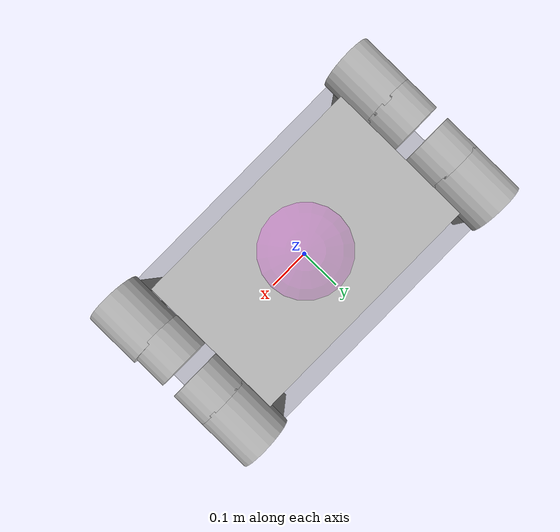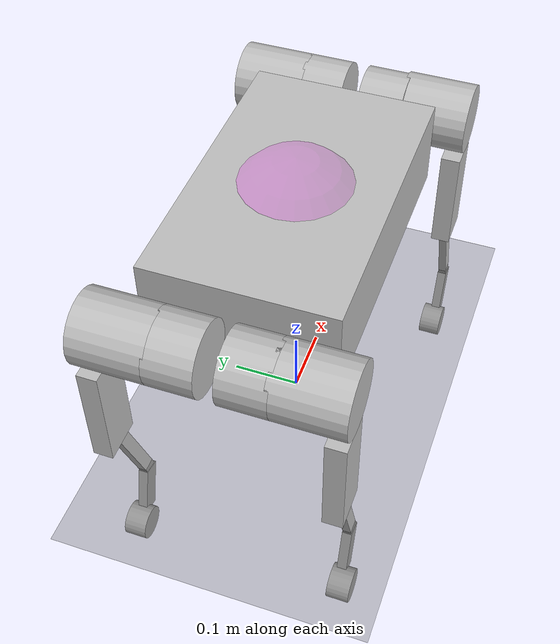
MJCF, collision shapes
<mujoco model="rcdog">
  <compiler angle="radian"/>

  <default class="main">
    <default class="hip_joint_range">
      <joint range="-0.87 0.87" type="hinge" limited="auto"  armature="0.01" frictionloss="0.2" />
      <position ctrlrange="-0.87 0.87" forcelimited="auto" forcerange="-60 60" kp="40." kv="1." />
    </default>
    <default class="thigh_joint_range">
      <joint range="-0.79 2.61" type="hinge" limited="auto"  armature="0.01" frictionloss="0.2" />
      <position ctrlrange="-0.79 2.61" forcelimited="auto" forcerange="-60 60" kp="40." kv="1." />
    </default>
    <default class="calf_joint_range">
      <joint range="-2.75 -0.55" type="hinge" limited="auto"  armature="0.01" frictionloss="0.2" />
      <position ctrlrange="-2.75 -0.55" forcelimited="auto" forcerange="-60 60" kp="40." kv="1." />
    </default>

    <default class="sensor_site">
      <site type="sphere" size="0.023" rgba="1 0 1 0.2" />
    </default>

    <default class="contype1">
      <geom contype="2" conaffinity="1" friction="1.2 0.8 0.0005" margin="0.002" condim="4" />
    </default>
    <default class="contype2">
      <geom contype="2" conaffinity="1" friction="1.2 0.8 0.0005" margin="0.002" condim="4" />
    </default>
    <default class="contype3">
      <geom contype="2" conaffinity="1" friction="1.2 0.8 0.0005" margin="0.002" condim="4" />
    </default>
    <default class="visualization">
      <geom contype="0" conaffinity="0" friction="1.2 0.8 0.0005" margin="0.002" condim="4" />
    </default>
  </default>

  <asset>
    <texture name="_plane" type="2d" builtin="checker" rgb1=".1 .1 .1" rgb2=".4 .4 .4"
        width="512" height="512" mark="cross" markrgb=".8 .8 .8" />
    <material name="_plane" reflectance="0.3" texture="_plane" texrepeat="1 1" texuniform="true" />

    <mesh name="lf_hip_link" file="meshes/lf_hip_link.STL"/>
    <mesh name="lf_thigh_link" file="meshes/lf_thigh_link.STL"/>
    <mesh name="lf_calf_link" file="meshes/lf_calf_link.STL"/>
    <mesh name="rf_hip_link" file="meshes/rf_hip_link.STL"/>
    <mesh name="rf_thigh_link" file="meshes/rf_thigh_link.STL"/>
    <mesh name="rf_calf_link" file="meshes/rf_calf_link.STL"/>
    <mesh name="lb_hip_link" file="meshes/lb_hip_link.STL"/>
    <mesh name="lb_thigh_link" file="meshes/lb_thigh_link.STL"/>
    <mesh name="lb_calf_link" file="meshes/lb_calf_link.STL"/>
    <mesh name="rb_hip_link" file="meshes/rb_hip_link.STL"/>
    <mesh name="rb_thigh_link" file="meshes/rb_thigh_link.STL"/>
    <mesh name="rb_calf_link" file="meshes/rb_calf_link.STL"/>

    <mesh name="lf_foot_link" file="meshes/lf_foot_link.STL"/>
    <mesh name="rf_foot_link" file="meshes/rf_foot_link.STL"/>
    <mesh name="lb_foot_link" file="meshes/lb_foot_link.STL"/>
    <mesh name="rb_foot_link" file="meshes/rb_foot_link.STL"/>
  </asset>

  <worldbody>
    <geom name="floor" pos="0 0 0" size="0 0 .25" type="plane" material="_plane" condim="3" />
    <light directional="true" ambient=".3 .3 .3" pos="30 30 30" dir="0 0 -1"
        diffuse="0.5 0.5 0.5" specular="0.5 0.5 0.5" />

  <body name="base_link" pos="0 0 0.35">
  <freejoint/>
    <site name="imu" class="sensor_site" size="0.1" pos="0.00 0.0 0.0" />
    <geom size="0.211 0.13 0.0625" type="box" rgba="0.753 0.753 0.753 1" class="visualization" />
    <body name="lf_hip_link" pos="0.27 0.077 0.0065">
      <inertial pos="-0.0049557 -0.0277292 -4.5e-06" quat="0.735051 0 0 0.678012" mass="0.351816" diaginertia="0.00027734 0.00022506 0.0001857"/>
      <joint name="lf_hip_roll_joint" pos="0 0 0" axis="1 0 0" range="-0.87 0.87"/>
      <geom type="mesh" rgba="0.4 0.4 0.4 1" mesh="lf_hip_link" class="visualization" />

      <geom size="0.05 0.0325" pos="0 -0.032 0" quat="0.707107 0.707107 0 0" type="cylinder" rgba="0.753 0.753 0.753 0"/>
      <body name="lf_thigh_link" pos="0 0.0820941 0">
        <inertial pos="-0.0049861 -0.028429 -0.032829" quat="0.694447 0.00340804 -0.00491324 0.719519" mass="0.658934" diaginertia="0.00112127 0.000994743 0.000290082"/>
        <joint name="lf_hip_pitch_joint" pos="0 0 0" axis="0 1 0" range="-0.79 2.61"/>
        <geom type="mesh" rgba="0.4 0.4 0.4 1" mesh="lf_thigh_link" class="visualization" />

        <geom size="0.05 0.05" pos="0 -0.035 0" quat="0.707107 0.707107 0 0" type="cylinder" rgba="0.753 0.753 0.753 0"/>
        <geom size="0.03 0.014 0.08" pos="-0.01 0 -0.13" type="box" rgba="0.753 0.753 0.753 0"/>
        <body name="lf_calf_link" pos="0 0 -0.2125">
          <inertial pos="0.0270111 -0.000371773 -0.169193" quat="0.710765 -0.00383657 -0.00528507 0.7034" mass="0.144651" diaginertia="0.00106985 0.00102817 5.60825e-05"/>
          <joint name="lf_knee_joint" pos="0 0 0" axis="0 1 0" range="-2.75 -0.55"/>
          <geom type="mesh" rgba="0.4 0.4 0.4 1" mesh="lf_calf_link" class="visualization" />
          <geom type="mesh" rgba="0.4 0.4 0.4 1" mesh="lf_foot_link" pos="0.0241527 0 -0.2386162" class="visualization" />

          <geom size="0.01 0.006 0.09" pos="0.03 0 -0.08" quat="0.984808 0 -0.173648 0" type="box" rgba="0.753 0.753 0.753 0"/>
          <geom size="0.014 0.007 0.04" pos="0.048 0 -0.195" quat="0.991445 0 0.130526 0" type="box" rgba="0.753 0.753 0.753 0"/>
          <geom size="0.025 0.0165" pos="0.0181731 0 -0.243416" quat="0.707107 0.707107 0 0" type="cylinder" rgba="0.753 0.753 0.753 0"/>
        </body>
      </body>
    </body>
    <body name="rf_hip_link" pos="0.27 -0.077 0.0065">
      <inertial pos="-0.0049556 0.0277281 0.0002435" quat="0.677955 0.00264509 -0.00355558 0.73509" mass="0.351816" diaginertia="0.000277247 0.00022506 0.000185693"/>
      <joint name="rf_hip_roll_joint" pos="0 0 0" axis="1 0 0" range="-0.87 0.87"/>
      <geom type="mesh" rgba="0.4 0.4 0.4 1" mesh="rf_hip_link" class="visualization" />

      <geom size="0.05 0.0325" pos="0 0.032 0" quat="0.707107 0.707107 0 0" type="cylinder" rgba="0.753 0.753 0.753 0"/>
      <body name="rf_thigh_link" pos="0.0062567 -0.0799602 -0.0007144">
        <inertial pos="-0.0049861 0.028429 -0.032829" quat="0.691989 -0.00580403 -0.0025322 0.721881" mass="0.658934" diaginertia="0.00112124 0.000994774 0.000290084"/>
        <joint name="rf_hip_pitch_joint" pos="0 0 0" axis="0 1 0" range="-0.79 2.61"/>
        <geom type="mesh" rgba="0.4 0.4 0.4 1" mesh="rf_thigh_link" class="visualization" />

        <geom size="0.05 0.05" pos="0 0.035 0" quat="0.707107 0.707107 0 0" type="cylinder" rgba="0.753 0.753 0.753 0"/>
        <geom size="0.03 0.014 0.08" pos="-0.01 0 -0.13" type="box" rgba="0.753 0.753 0.753 0"/>
        <body name="rf_calf_link" pos="0 0.0018314 -0.212492">
          <inertial pos="0.0270111 0.00112648 -0.16919" quat="0.710361 -0.000856967 -0.00823924 0.703789" mass="0.144651" diaginertia="0.00106988 0.00102816 5.60438e-05"/>
          <joint name="rf_knee_joint" pos="0 0 0" axis="0 1 0" range="-2.75 -0.55"/>
          <geom type="mesh" rgba="0.4 0.4 0.4 1" mesh="rf_calf_link" class="visualization" />
          <geom type="mesh" rgba="0.4 0.4 0.4 1" mesh="rf_foot_link" pos="0.0241527 0.0020565 -0.2386074" class="visualization" />

          <geom size="0.01 0.006 0.09" pos="0.03 0 -0.08" quat="0.984808 0 -0.173648 0" type="box" rgba="0.753 0.753 0.753 0"/>
          <geom size="0.014 0.007 0.04" pos="0.048 0 -0.195" quat="0.991445 0 0.130526 0" type="box" rgba="0.753 0.753 0.753 0"/>
          <geom size="0.025 0.0165" pos="0.0181731 0.0020565 -0.243407" quat="0.707107 0.707107 0 0" type="cylinder" rgba="0.753 0.753 0.753 0"/>
        </body>
      </body>
    </body>
    <body name="lb_hip_link" pos="-0.27 0.077 0.0065">
      <inertial pos="0.0049557 -0.0277292 4.5e-06" quat="0.678012 0 0 0.735051" mass="0.351816" diaginertia="0.00027734 0.00022506 0.0001857"/>
      <joint name="lb_hip_roll_joint" pos="0 0 0" axis="1 0 0" range="-0.87 0.87"/>
      <geom type="mesh" rgba="0.4 0.4 0.4 1" mesh="lb_hip_link" class="visualization" />

      <geom size="0.05 0.0325" pos="0 -0.032 0" quat="0.707107 0.707107 0 0" type="cylinder" rgba="0.753 0.753 0.753 0"/>
      <body name="lb_thigh_link" pos="0 0.0820941 0">
        <inertial pos="-0.0034269 -0.0273873 -0.0328343" quat="0.701723 -0.00981018 -0.0169627 0.71218" mass="0.658934" diaginertia="0.00112102 0.000971305 0.000313776"/>
        <joint name="lb_hip_pitch_joint" pos="0 0 0" axis="0 1 0" range="-0.79 2.61"/>
        <geom type="mesh" rgba="0.4 0.4 0.4 1" mesh="lb_thigh_link" class="visualization" />

        <geom size="0.05 0.05" pos="0 -0.035 0" quat="0.707107 0.707107 0 0" type="cylinder" rgba="0.753 0.753 0.753 0"/>
        <geom size="0.03 0.014 0.08" pos="-0.01 0 -0.13" type="box" rgba="0.753 0.753 0.753 0"/>
        <body name="lb_calf_link" pos="0 0 -0.2125">
          <inertial pos="0.0270111 -0.00124378 -0.169195" quat="0.719103 -0.00164006 -0.00738475 0.694863" mass="0.144651" diaginertia="0.00107003 0.00102822 5.61392e-05"/>
          <joint name="lb_knee_joint" pos="0 0 0" axis="0 1 0" range="-2.75 -0.55"/>
          <geom type="mesh" rgba="0.4 0.4 0.4 1" mesh="lb_calf_link" class="visualization" />
          <geom type="mesh" rgba="0.4 0.4 0.4 1" mesh="lb_foot_link" pos="0.0241527 0 -0.2386162" class="visualization" />

          <geom size="0.01 0.006 0.09" pos="0.03 0 -0.08" quat="0.984808 0 -0.173648 0" type="box" rgba="0.753 0.753 0.753 0"/>
          <geom size="0.014 0.007 0.04" pos="0.048 0 -0.195" quat="0.991445 0 0.130526 0" type="box" rgba="0.753 0.753 0.753 0"/>
          <geom size="0.025 0.0165" pos="0.0181731 0 -0.243416" quat="0.707107 0.707107 0 0" type="cylinder" rgba="0.753 0.753 0.753 0"/>
        </body>
      </body>
    </body>
    <body name="rb_hip_link" pos="-0.27 -0.077 0.0065">
      <inertial pos="0.0049557 0.027729 -4.5e-06" quat="0.735103 0 0 0.677955" mass="0.351816" diaginertia="0.00027724 0.00022506 0.0001857"/>
      <joint name="rb_hip_roll_joint" pos="0 0 0" axis="1 0 0" range="-0.87 0.87"/>
      <geom type="mesh" rgba="0.4 0.4 0.4 1" mesh="rb_hip_link" class="visualization" />

      <geom size="0.05 0.0325" pos="0 0.032 0" quat="0.707107 0.707107 0 0" type="cylinder" rgba="0.753 0.753 0.753 0"/>
      <body name="rb_thigh_link" pos="0 -0.0799664 0">
        <inertial pos="-0.0034269 0.0273873 -0.0328343" quat="0.718631 -0.0074457 0.00604231 0.695326" mass="0.658934" diaginertia="0.00112136 0.000970238 0.000314504"/>
        <joint name="rb_hip_pitch_joint" pos="0 0 0" axis="0 1 0" range="-0.79 2.61"/>
        <geom type="mesh" rgba="0.4 0.4 0.4 1" mesh="rb_thigh_link" class="visualization" />

        <geom size="0.05 0.05" pos="0 0.035 0" quat="0.707107 0.707107 0 0" type="cylinder" rgba="0.753 0.753 0.753 0"/>
        <geom size="0.03 0.014 0.08" pos="-0.01 0 -0.13" type="box" rgba="0.753 0.753 0.753 0"/>
        <body name="rb_calf_link" pos="0 0.0018315 -0.2125">
          <inertial pos="0.0270111 -0.000351129 -0.169195" quat="0.671267 -0.0131559 0.00498874 0.741082" mass="0.144651" diaginertia="0.00107097 0.00102898 5.66853e-05"/>
          <joint name="rb_knee_joint" pos="0 0 0" axis="0 1 0" range="-2.75 -0.55"/>
          <geom type="mesh" rgba="0.4 0.4 0.4 1" mesh="rb_calf_link" class="visualization" />
          <geom type="mesh" rgba="0.4 0.4 0.4 1" mesh="rb_foot_link" pos="0.0241527 -0.0039592 -0.2386162" class="visualization" />

          <geom size="0.01 0.006 0.09" pos="0.03 0 -0.08" quat="0.984808 0 -0.173648 0" type="box" rgba="0.753 0.753 0.753 0"/>
          <geom size="0.014 0.007 0.04" pos="0.048 0 -0.195" quat="0.991445 0 0.130526 0" type="box" rgba="0.753 0.753 0.753 0"/>
          <geom size="0.025 0.0165" pos="0.0181731 -0.0039592 -0.243416" quat="0.707107 0.707107 0 0" type="cylinder" rgba="0.753 0.753 0.753 0"/>
        </body>
      </body>
    </body>
  </body>
  </worldbody>

  <actuator>
    <position name="FL_hip_joint"   joint="lf_hip_roll_joint"   class="hip_joint_range" />
    <position name="FR_hip_joint"   joint="rf_hip_roll_joint"   class="hip_joint_range" />
    <position name="RL_hip_joint"   joint="lb_hip_roll_joint"   class="hip_joint_range" />
    <position name="RR_hip_joint"   joint="rb_hip_roll_joint"   class="hip_joint_range" />
    <position name="FL_thigh_joint" joint="lf_hip_pitch_joint" class="thigh_joint_range" />
    <position name="FR_thigh_joint" joint="rf_hip_pitch_joint" class="thigh_joint_range" />
    <position name="RL_thigh_joint" joint="lb_hip_pitch_joint" class="thigh_joint_range" />
    <position name="RR_thigh_joint" joint="rb_hip_pitch_joint" class="thigh_joint_range" />
    <position name="FL_calf_joint"  joint="lf_knee_joint"  class="calf_joint_range" />
    <position name="FR_calf_joint"  joint="rf_knee_joint"  class="calf_joint_range" />
    <position name="RL_calf_joint"  joint="lb_knee_joint"  class="calf_joint_range" />
    <position name="RR_calf_joint"  joint="rb_knee_joint"  class="calf_joint_range" />
  </actuator>

  <sensor>
    <jointpos name="FL_hip_joint_p"   joint="lf_hip_roll_joint" />
    <jointpos name="FR_hip_joint_p"   joint="rf_hip_roll_joint" />
    <jointpos name="RL_hip_joint_p"   joint="lb_hip_roll_joint" />
    <jointpos name="RR_hip_joint_p"   joint="rb_hip_roll_joint" />
    <jointpos name="FL_thigh_joint_p" joint="lf_hip_pitch_joint" />
    <jointpos name="FR_thigh_joint_p" joint="rf_hip_pitch_joint" />
    <jointpos name="RL_thigh_joint_p" joint="lb_hip_pitch_joint" />
    <jointpos name="RR_thigh_joint_p" joint="rb_hip_pitch_joint" />
    <jointpos name="FL_calf_joint_p"  joint="lf_knee_joint" />
    <jointpos name="FR_calf_joint_p"  joint="rf_knee_joint" />
    <jointpos name="RL_calf_joint_p"  joint="lb_knee_joint" />
    <jointpos name="RR_calf_joint_p"  joint="rb_knee_joint" />

    <jointvel name="FL_hip_joint_v"   joint="lf_hip_roll_joint" />
    <jointvel name="FR_hip_joint_v"   joint="rf_hip_roll_joint" />
    <jointvel name="RL_hip_joint_v"   joint="lb_hip_roll_joint" />
    <jointvel name="RR_hip_joint_v"   joint="rb_hip_roll_joint" />
    <jointvel name="FL_thigh_joint_v" joint="lf_hip_pitch_joint" />
    <jointvel name="FR_thigh_joint_v" joint="rf_hip_pitch_joint" />
    <jointvel name="RL_thigh_joint_v" joint="lb_hip_pitch_joint" />
    <jointvel name="RR_thigh_joint_v" joint="rb_hip_pitch_joint" />
    <jointvel name="FL_calf_joint_v"  joint="lf_knee_joint" />
    <jointvel name="FR_calf_joint_v"  joint="rf_knee_joint" />
    <jointvel name="RL_calf_joint_v"  joint="lb_knee_joint" />
    <jointvel name="RR_calf_joint_v"  joint="rb_knee_joint" />

    <framequat name='orientation' objtype='site' objname='imu' />
    <gyro  name='base_ang_vel' site='imu' />
  </sensor>

</mujoco>
